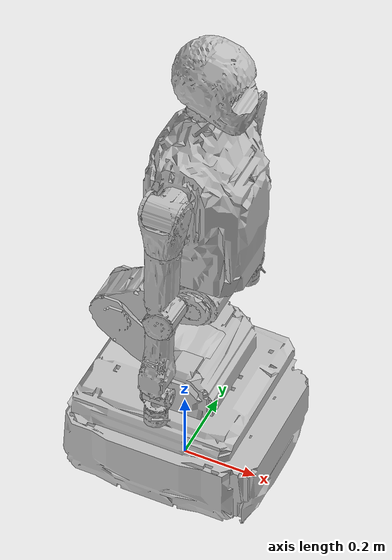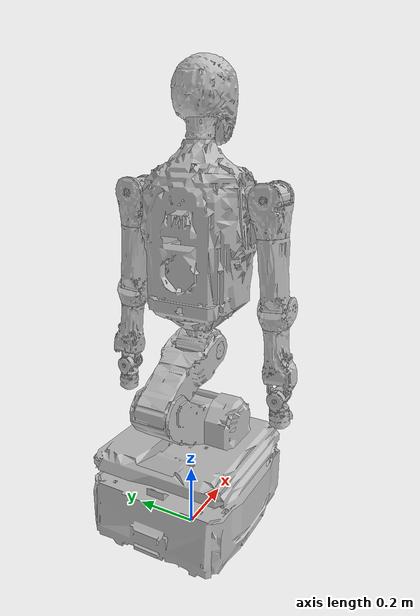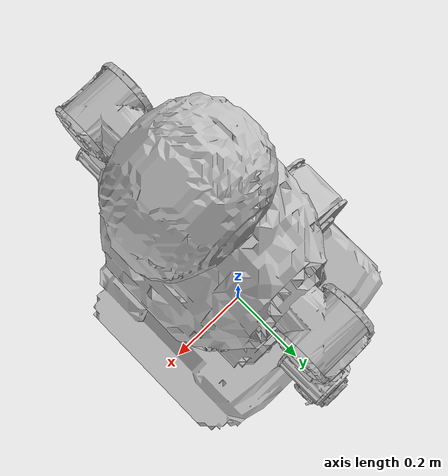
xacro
<?xml version='1.0' encoding='utf-8'?>
<robot name="tianyi2_urdf" xmlns:xacro="http://wiki.ros.org/xacro">
  <link name="base">
    <inertial>
      <origin xyz="-0.00067 -0.002625 0.150395" rpy="0 0 0" />
      <mass value="47.555667" />
      <inertia ixx="1.277779" ixy="-0.001232" ixz="-0.093599" iyy="1.293166" iyz="0.0036" izz="1.385346" />
    </inertial>
    <visual>
      <origin xyz="0 0 0" rpy="0 0 0" />
      <geometry>
        <mesh filename="package://tianyi2_urdf/meshes/base.STL" />
      </geometry>
      <material name="">
        <color rgba="0.752941176470588 0.752941176470588 0.752941176470588 1" />
      </material>
    </visual>
    <collision>
      <origin xyz="0 0 0" rpy="0 0 0" />
      <geometry>
        <mesh filename="package://tianyi2_urdf/meshes_convex/base.STL" />
      </geometry>
    </collision>
  </link>
  <link name="first_leg_pitch_link">
    <inertial>
      <origin xyz="-0.105847 -0.000632 0.041305" rpy="0 0 0" />
      <mass value="2.460134" />
      <inertia ixx="0.012918" ixy="0.000516" ixz="0.0066" iyy="0.028707" iyz="-0.000254" izz="0.027239" />
    </inertial>
    <visual>
      <origin xyz="0 0 0" rpy="0 0 0" />
      <geometry>
        <mesh filename="package://tianyi2_urdf/meshes/first_leg_pitch_link.STL" />
      </geometry>
      <material name="">
        <color rgba="0.752941176470588 0.752941176470588 0.752941176470588 1" />
      </material>
    </visual>
    <collision>
      <origin xyz="0 0 0" rpy="0 0 0" />
      <geometry>
        <mesh filename="package://tianyi2_urdf/meshes_convex/first_leg_pitch_link.STL" />
      </geometry>
    </collision>
  </link>
  <joint name="first_leg_pitch_joint" type="revolute">
    <origin xyz="0.049182 0 0.37" rpy="0 0 0" />
    <parent link="base" />
    <child link="first_leg_pitch_link" />
    <axis xyz="0 1 0" />
    <limit lower="-0.41887902047863906" upper="0.9075712110370514" effort="332.0" velocity="3.9269908169872414" />
  </joint>
  <link name="second_leg_pitch_link">
    <inertial>
      <origin xyz="0.056775 0.000389 0.045258" rpy="0 0 0" />
      <mass value="2.430846" />
      <inertia ixx="0.011853" ixy="4.6e-05" ixz="-0.009109" iyy="0.025086" iyz="5.6e-05" izz="0.022169" />
    </inertial>
    <visual>
      <origin xyz="0 0 0" rpy="0 0 0" />
      <geometry>
        <mesh filename="package://tianyi2_urdf/meshes/second_leg_pitch_link.STL" />
      </geometry>
      <material name="">
        <color rgba="0.752941176470588 0.752941176470588 0.752941176470588 1" />
      </material>
    </visual>
    <collision>
      <origin xyz="0 0 0" rpy="0 0 0" />
      <geometry>
        <mesh filename="package://tianyi2_urdf/meshes_convex/second_leg_pitch_link.STL" />
      </geometry>
    </collision>
  </link>
  <joint name="second_leg_pitch_joint" type="revolute">
    <origin xyz="-0.20785 0 0.12" rpy="0 0 0" />
    <parent link="first_leg_pitch_link" />
    <child link="second_leg_pitch_link" />
    <axis xyz="0 1 0" />
    <limit lower="-1.7453292519943295" upper="0.5061454830783556" effort="332.0" velocity="3.9269908169872414" />
  </joint>
  <link name="waist_pitch_link">
    <inertial>
      <origin xyz="8e-06 0.012369 0.001276" rpy="0 0 0" />
      <mass value="3.38238" />
      <inertia ixx="0.005589" ixy="1e-06" ixz="-1e-06" iyy="0.006064" iyz="4.9e-05" izz="0.005334" />
    </inertial>
    <visual>
      <origin xyz="0 0 0" rpy="0 0 0" />
      <geometry>
        <mesh filename="package://tianyi2_urdf/meshes/waist_pitch_link.STL" />
      </geometry>
      <material name="">
        <color rgba="0.752941176470588 0.752941176470588 0.752941176470588 1" />
      </material>
    </visual>
    <collision>
      <origin xyz="0 0 0" rpy="0 0 0" />
      <geometry>
        <mesh filename="package://tianyi2_urdf/meshes_convex/waist_pitch_link.STL" />
      </geometry>
    </collision>
  </link>
  <joint name="waist_pitch_joint" type="revolute">
    <origin xyz="0.20785 0 0.12" rpy="0 0 0" />
    <parent link="second_leg_pitch_link" />
    <child link="waist_pitch_link" />
    <axis xyz="0 1 0" />
    <limit lower="-0.7853981633974483" upper="2.0943951023931953" effort="332.0" velocity="3.9269908169872414" />
  </joint>
  <link name="waist_yaw_link">
    <inertial>
      <origin xyz="0.009196 -0.000592 0.251379" rpy="0 0 0" />
      <mass value="13.795395" />
      <inertia ixx="0.372395" ixy="0.000248" ixz="0.001337" iyy="0.331609" iyz="0.000779" izz="0.127753" />
    </inertial>
    <visual>
      <origin xyz="0 0 0" rpy="0 0 0" />
      <geometry>
        <mesh filename="package://tianyi2_urdf/meshes/waist_yaw_link.STL" />
      </geometry>
      <material name="">
        <color rgba="0.752941176470588 0.752941176470588 0.752941176470588 1" />
      </material>
    </visual>
    <collision>
      <origin xyz="0 0 0" rpy="0 0 0" />
      <geometry>
        <mesh filename="package://tianyi2_urdf/meshes_convex/waist_yaw_link.STL" />
      </geometry>
    </collision>
  </link>
  <joint name="waist_yaw_joint" type="revolute">
    <origin xyz="0 0 0.07" rpy="0 0 0" />
    <parent link="waist_pitch_link" />
    <child link="waist_yaw_link" />
    <axis xyz="0 0 1" />
    <limit lower="-2.9670597283903604" upper="3.141592653589793" effort="143.0" velocity="4.71238898038469" />
  </joint>
  <link name="head_yaw_link">
    <inertial>
      <origin xyz="-0.000202 0.000454 0.007248" rpy="0 0 0" />
      <mass value="0.088397" />
      <inertia ixx="9.5e-05" ixy="-1e-06" ixz="-3e-06" iyy="7.6e-05" iyz="-3e-06" izz="0.000106" />
    </inertial>
    <visual>
      <origin xyz="0 0 0" rpy="0 0 0" />
      <geometry>
        <mesh filename="package://tianyi2_urdf/meshes/head_yaw_link.STL" />
      </geometry>
      <material name="">
        <color rgba="0.752941176470588 0.752941176470588 0.752941176470588 1" />
      </material>
    </visual>
    <collision>
      <origin xyz="0 0 0" rpy="0 0 0" />
      <geometry>
        <mesh filename="package://tianyi2_urdf/meshes_convex/head_yaw_link.STL" />
      </geometry>
    </collision>
  </link>
  <joint name="head_yaw_joint" type="revolute">
    <origin xyz="-0.002 0 0.56508" rpy="0 0 0" />
    <parent link="waist_yaw_link" />
    <child link="head_yaw_link" />
    <axis xyz="0 0 1" />
    <limit lower="-1.5707963267948966" upper="1.5707963267948966" effort="6.3" velocity="7.5398223686155035" />
  </joint>
  <link name="head_pitch_link">
    <inertial>
      <origin xyz="-0.000274 0.004118 2.3e-05" rpy="0 0 0" />
      <mass value="0.23046" />
      <inertia ixx="9.2e-05" ixy="1e-06" ixz="-1e-06" iyy="5.4e-05" iyz="0.0" izz="9.5e-05" />
    </inertial>
    <visual>
      <origin xyz="0 0 0" rpy="0 0 0" />
      <geometry>
        <mesh filename="package://tianyi2_urdf/meshes/head_pitch_link.STL" />
      </geometry>
      <material name="">
        <color rgba="0.752941176470588 0.752941176470588 0.752941176470588 1" />
      </material>
    </visual>
    <collision>
      <origin xyz="0 0 0" rpy="0 0 0" />
      <geometry>
        <mesh filename="package://tianyi2_urdf/meshes_convex/head_pitch_link.STL" />
      </geometry>
    </collision>
  </link>
  <joint name="head_pitch_joint" type="revolute">
    <origin xyz="0.01455 0 0.0304" rpy="0 0.2618 0" />
    <parent link="head_yaw_link" />
    <child link="head_pitch_link" />
    <axis xyz="0 1 0" />
    <limit lower="-0.4363323129985824" upper="0.4363323129985824" effort="6.3" velocity="7.5398223686155035" />
  </joint>
  <link name="head_roll_link">
    <inertial>
      <origin xyz="0.022467 0.001208 0.053952" rpy="0 0 0" />
      <mass value="0.844627" />
      <inertia ixx="0.00235" ixy="3.8e-05" ixz="0.000436" iyy="0.003365" iyz="6e-06" izz="0.002875" />
    </inertial>
    <visual>
      <origin xyz="0 0 0" rpy="0 0 0" />
      <geometry>
        <mesh filename="package://tianyi2_urdf/meshes/head_roll_link.STL" />
      </geometry>
      <material name="">
        <color rgba="0.752941176470588 0.752941176470588 0.752941176470588 1" />
      </material>
    </visual>
    <collision>
      <origin xyz="0 0 0" rpy="0 0 0" />
      <geometry>
        <mesh filename="package://tianyi2_urdf/meshes_convex/head_roll_link.STL" />
      </geometry>
    </collision>
  </link>
  <joint name="head_roll_joint" type="revolute">
    <origin xyz="0 0 0" rpy="0 0 0" />
    <parent link="head_pitch_link" />
    <child link="head_roll_link" />
    <axis xyz="1 0 0" />
    <limit lower="-0.4537856055185257" upper="0.4537856055185257" effort="6.3" velocity="7.5398223686155035" />
  </joint>
  <link name="camera_head_link">
    <inertial>
      <origin xyz="0.010986 -0.000307 -0.016475" rpy="0 0 0" />
      <mass value="0.1" />
      <inertia ixx="1.6e-05" ixy="0.0" ixz="0.0" iyy="8e-05" iyz="0.0" izz="7.7e-05" />
    </inertial>
    <visual>
      <origin xyz="0 0 0" rpy="0 0 0" />
      <geometry>
        <mesh filename="package://tianyi2_urdf/meshes/camera_head_link.STL" />
      </geometry>
      <material name="">
        <color rgba="0.752941176470588 0.752941176470588 0.752941176470588 1" />
      </material>
    </visual>
    <collision>
      <origin xyz="0 0 0" rpy="0 0 0" />
      <geometry>
        <mesh filename="package://tianyi2_urdf/meshes_convex/camera_head_link.STL" />
      </geometry>
    </collision>
  </link>
  <joint name="camera_head_joint" type="fixed">
    <origin xyz="0.075288 0.010935 0.07441" rpy="-1.8326 0 -1.5708" />
    <parent link="head_roll_link" />
    <child link="camera_head_link" />
    <axis xyz="0 0 0" />
  </joint>
  <link name="shoulder_pitch_l_link">
    <inertial>
      <origin xyz="0.007494 0.064184 -2e-05" rpy="0 0 0" />
      <mass value="1.032698" />
      <inertia ixx="0.001025" ixy="-2.7e-05" ixz="-1e-06" iyy="0.001078" iyz="0.0" izz="0.001247" />
    </inertial>
    <visual>
      <origin xyz="0 0 0" rpy="0 0 0" />
      <geometry>
        <mesh filename="package://tianyi2_urdf/meshes/shoulder_pitch_l_link.STL" />
      </geometry>
      <material name="">
        <color rgba="0.752941176470588 0.752941176470588 0.752941176470588 1" />
      </material>
    </visual>
    <collision>
      <origin xyz="0 0 0" rpy="0 0 0" />
      <geometry>
        <mesh filename="package://tianyi2_urdf/meshes_convex/shoulder_pitch_l_link.STL" />
      </geometry>
    </collision>
  </link>
  <joint name="shoulder_pitch_l_joint" type="revolute">
    <origin xyz="0 0.14539 0.37721" rpy="0.087266 0 0" />
    <parent link="waist_yaw_link" />
    <child link="shoulder_pitch_l_link" />
    <axis xyz="0 1 0" />
    <limit lower="-2.9670597283903604" upper="2.9670597283903604" effort="91.0" velocity="9.215338450530059" />
  </joint>
  <link name="shoulder_roll_l_link">
    <inertial>
      <origin xyz="0.002389 0.002259 -0.048236" rpy="0 0 0" />
      <mass value="0.440997" />
      <inertia ixx="0.001001" ixy="-4e-06" ixz="-2.5e-05" iyy="0.001313" iyz="-1.4e-05" izz="0.000911" />
    </inertial>
    <visual>
      <origin xyz="0 0 0" rpy="0 0 0" />
      <geometry>
        <mesh filename="package://tianyi2_urdf/meshes/shoulder_roll_l_link.STL" />
      </geometry>
      <material name="">
        <color rgba="0.752941176470588 0.752941176470588 0.752941176470588 1" />
      </material>
    </visual>
    <collision>
      <origin xyz="0 0 0" rpy="0 0 0" />
      <geometry>
        <mesh filename="package://tianyi2_urdf/meshes_convex/shoulder_roll_l_link.STL" />
      </geometry>
    </collision>
  </link>
  <joint name="shoulder_roll_l_joint" type="revolute">
    <origin xyz="0 0.068 0" rpy="0 0 0" />
    <parent link="shoulder_pitch_l_link" />
    <child link="shoulder_roll_l_link" />
    <axis xyz="1 0 0" />
    <limit lower="-0.2617993877991494" upper="2.6179938779914944" effort="95.0" velocity="3.979350694547071" />
  </joint>
  <link name="shoulder_yaw_l_link">
    <inertial>
      <origin xyz="0.008319 0.002686 -0.112525" rpy="0 0 0" />
      <mass value="1.365033" />
      <inertia ixx="0.009637" ixy="-5.7e-05" ixz="0.00095" iyy="0.0096" iyz="0.000339" izz="0.001331" />
    </inertial>
    <visual>
      <origin xyz="0 0 0" rpy="0 0 0" />
      <geometry>
        <mesh filename="package://tianyi2_urdf/meshes/shoulder_yaw_l_link.STL" />
      </geometry>
      <material name="">
        <color rgba="0.752941176470588 0.752941176470588 0.752941176470588 1" />
      </material>
    </visual>
    <collision>
      <origin xyz="0 0 0" rpy="0 0 0" />
      <geometry>
        <mesh filename="package://tianyi2_urdf/meshes_convex/shoulder_yaw_l_link.STL" />
      </geometry>
    </collision>
  </link>
  <joint name="shoulder_yaw_l_joint" type="revolute">
    <origin xyz="0 0 -0.1025" rpy="0 0 0" />
    <parent link="shoulder_roll_l_link" />
    <child link="shoulder_yaw_l_link" />
    <axis xyz="0 0 1" />
    <limit lower="-2.9670597283903604" upper="2.9670597283903604" effort="35.0" velocity="5.235987755982989" />
  </joint>
  <link name="elbow_pitch_l_link">
    <inertial>
      <origin xyz="-0.014694 -7.2e-05 -0.026081" rpy="0 0 0" />
      <mass value="0.246311" />
      <inertia ixx="0.000381" ixy="1e-06" ixz="-1.2e-05" iyy="0.000222" iyz="2e-06" izz="0.000401" />
    </inertial>
    <visual>
      <origin xyz="0 0 0" rpy="0 0 0" />
      <geometry>
        <mesh filename="package://tianyi2_urdf/meshes/elbow_pitch_l_link.STL" />
      </geometry>
      <material name="">
        <color rgba="0.752941176470588 0.752941176470588 0.752941176470588 1" />
      </material>
    </visual>
    <collision>
      <origin xyz="0 0 0" rpy="0 0 0" />
      <geometry>
        <mesh filename="package://tianyi2_urdf/meshes_convex/elbow_pitch_l_link.STL" />
      </geometry>
    </collision>
  </link>
  <joint name="elbow_pitch_l_joint" type="revolute">
    <origin xyz="0.02 0 -0.1975" rpy="0 0 0" />
    <parent link="shoulder_yaw_l_link" />
    <child link="elbow_pitch_l_link" />
    <axis xyz="0 1 0" />
    <limit lower="-2.6179938779914944" upper="0.2617993877991494" effort="35.0" velocity="5.235987755982989" />
  </joint>
  <link name="elbow_yaw_l_link">
    <inertial>
      <origin xyz="0.000158 0.001503 -0.069535" rpy="0 0 0" />
      <mass value="0.986828" />
      <inertia ixx="0.003108" ixy="-1e-06" ixz="8e-06" iyy="0.003035" iyz="8.9e-05" izz="0.00058" />
    </inertial>
    <visual>
      <origin xyz="0 0 0" rpy="0 0 0" />
      <geometry>
        <mesh filename="package://tianyi2_urdf/meshes/elbow_yaw_l_link.STL" />
      </geometry>
      <material name="">
        <color rgba="0.752941176470588 0.752941176470588 0.752941176470588 1" />
      </material>
    </visual>
    <collision>
      <origin xyz="0 0 0" rpy="0 0 0" />
      <geometry>
        <mesh filename="package://tianyi2_urdf/meshes_convex/elbow_yaw_l_link.STL" />
      </geometry>
    </collision>
  </link>
  <joint name="elbow_yaw_l_joint" type="revolute">
    <origin xyz="-0.02 0 -0.0543" rpy="0 0 0" />
    <parent link="elbow_pitch_l_link" />
    <child link="elbow_yaw_l_link" />
    <axis xyz="0 0 1" />
    <limit lower="-2.9670597283903604" upper="2.9670597283903604" effort="24.0" velocity="10.471975511965978" />
  </joint>
  <link name="wrist_pitch_l_link">
    <inertial>
      <origin xyz="0.005362 0.00064 -0.018812" rpy="0 0 0" />
      <mass value="0.262007" />
      <inertia ixx="7.1e-05" ixy="-3e-06" ixz="-2e-06" iyy="0.000112" iyz="-3e-06" izz="0.000111" />
    </inertial>
    <visual>
      <origin xyz="0 0 0" rpy="0 0 0" />
      <geometry>
        <mesh filename="package://tianyi2_urdf/meshes/wrist_pitch_l_link.STL" />
      </geometry>
      <material name="">
        <color rgba="0.752941176470588 0.752941176470588 0.752941176470588 1" />
      </material>
    </visual>
    <collision>
      <origin xyz="0 0 0" rpy="0 0 0" />
      <geometry>
        <mesh filename="package://tianyi2_urdf/meshes_convex/wrist_pitch_l_link.STL" />
      </geometry>
    </collision>
  </link>
  <joint name="wrist_pitch_l_joint" type="revolute">
    <origin xyz="0 0.002 -0.1887" rpy="0 0 0" />
    <parent link="elbow_yaw_l_link" />
    <child link="wrist_pitch_l_link" />
    <axis xyz="0 1 0" />
    <limit lower="-0.7853981633974483" upper="1.0471975511965976" effort="6.3" velocity="7.5398223686155035" />
  </joint>
  <link name="wrist_roll_l_link">
    <inertial>
      <origin xyz="0.000801 8.4e-05 -0.029302" rpy="0 0 0" />
      <mass value="0.131751" />
      <inertia ixx="6.9e-05" ixy="0.0" ixz="-1e-06" iyy="0.000116" iyz="0.0" izz="0.00011" />
    </inertial>
    <visual>
      <origin xyz="0 0 0" rpy="0 0 0" />
      <geometry>
        <mesh filename="package://tianyi2_urdf/meshes/wrist_roll_l_link.STL" />
      </geometry>
      <material name="">
        <color rgba="0.752941176470588 0.752941176470588 0.752941176470588 1" />
      </material>
    </visual>
    <collision>
      <origin xyz="0 0 0" rpy="0 0 0" />
      <geometry>
        <mesh filename="package://tianyi2_urdf/meshes_convex/wrist_roll_l_link.STL" />
      </geometry>
    </collision>
  </link>
  <joint name="wrist_roll_l_joint" type="revolute">
    <origin xyz="5.0485E-05 0 -0.02" rpy="0 0 0" />
    <parent link="wrist_pitch_l_link" />
    <child link="wrist_roll_l_link" />
    <axis xyz="1 0 0" />
    <limit lower="-1.6580627893946132" upper="1.3089969389957472" effort="6.3" velocity="7.5398223686155035" />
  </joint>
  <link name="left_tcp_link">
    <inertial>
      <origin xyz="0.000238 0.000502 0.021714" rpy="0 0 0" />
      <mass value="0.252604" />
      <inertia ixx="0.000124" ixy="-2e-06" ixz="0.0" iyy="0.000119" iyz="0.0" izz="0.000132" />
    </inertial>
    <visual>
      <origin xyz="0 0 0" rpy="0 0 0" />
      <geometry>
        <mesh filename="package://tianyi2_urdf/meshes/left_tcp_link.STL" />
      </geometry>
      <material name="">
        <color rgba="0.752941176470588 0.752941176470588 0.752941176470588 1" />
      </material>
    </visual>
    <collision>
      <origin xyz="0 0 0" rpy="0 0 0" />
      <geometry>
        <mesh filename="package://tianyi2_urdf/meshes_convex/left_tcp_link.STL" />
      </geometry>
    </collision>
  </link>
  <joint name="left_tcp_joint" type="fixed">
    <origin xyz="0 3.5454E-05 -0.084799" rpy="0 0 0" />
    <parent link="wrist_roll_l_link" />
    <child link="left_tcp_link" />
    <axis xyz="0 0 0" />
  </joint>
  <link name="shoulder_pitch_r_link">
    <inertial>
      <origin xyz="0.007494 -0.064184 -2e-05" rpy="0 0 0" />
      <mass value="1.032698" />
      <inertia ixx="0.001025" ixy="2.7e-05" ixz="-1e-06" iyy="0.001078" iyz="0.0" izz="0.001247" />
    </inertial>
    <visual>
      <origin xyz="0 0 0" rpy="0 0 0" />
      <geometry>
        <mesh filename="package://tianyi2_urdf/meshes/shoulder_pitch_r_link.STL" />
      </geometry>
      <material name="">
        <color rgba="0.752941176470588 0.752941176470588 0.752941176470588 1" />
      </material>
    </visual>
    <collision>
      <origin xyz="0 0 0" rpy="0 0 0" />
      <geometry>
        <mesh filename="package://tianyi2_urdf/meshes_convex/shoulder_pitch_r_link.STL" />
      </geometry>
    </collision>
  </link>
  <joint name="shoulder_pitch_r_joint" type="revolute">
    <origin xyz="0 -0.14539 0.37721" rpy="-0.087266 0 0" />
    <parent link="waist_yaw_link" />
    <child link="shoulder_pitch_r_link" />
    <axis xyz="0 1 0" />
    <limit lower="-2.9670597283903604" upper="2.9670597283903604" effort="91.0" velocity="9.215338450530059" />
  </joint>
  <link name="shoulder_roll_r_link">
    <inertial>
      <origin xyz="0.002389 -0.002259 -0.048236" rpy="0 0 0" />
      <mass value="0.440997" />
      <inertia ixx="0.001001" ixy="4e-06" ixz="-2.5e-05" iyy="0.001313" iyz="1.4e-05" izz="0.000911" />
    </inertial>
    <visual>
      <origin xyz="0 0 0" rpy="0 0 0" />
      <geometry>
        <mesh filename="package://tianyi2_urdf/meshes/shoulder_roll_r_link.STL" />
      </geometry>
      <material name="">
        <color rgba="0.752941176470588 0.752941176470588 0.752941176470588 1" />
      </material>
    </visual>
    <collision>
      <origin xyz="0 0 0" rpy="0 0 0" />
      <geometry>
        <mesh filename="package://tianyi2_urdf/meshes_convex/shoulder_roll_r_link.STL" />
      </geometry>
    </collision>
  </link>
  <joint name="shoulder_roll_r_joint" type="revolute">
    <origin xyz="0 -0.068 0" rpy="0 0 0" />
    <parent link="shoulder_pitch_r_link" />
    <child link="shoulder_roll_r_link" />
    <axis xyz="1 0 0" />
    <limit lower="-2.6179938779914944" upper="0.2617993877991494" effort="95.0" velocity="3.979350694547071" />
  </joint>
  <link name="shoulder_yaw_r_link">
    <inertial>
      <origin xyz="0.008319 -0.002686 -0.112525" rpy="0 0 0" />
      <mass value="1.365033" />
      <inertia ixx="0.009637" ixy="5.7e-05" ixz="0.00095" iyy="0.0096" iyz="-0.000339" izz="0.001331" />
    </inertial>
    <visual>
      <origin xyz="0 0 0" rpy="0 0 0" />
      <geometry>
        <mesh filename="package://tianyi2_urdf/meshes/shoulder_yaw_r_link.STL" />
      </geometry>
      <material name="">
        <color rgba="0.752941176470588 0.752941176470588 0.752941176470588 1" />
      </material>
    </visual>
    <collision>
      <origin xyz="0 0 0" rpy="0 0 0" />
      <geometry>
        <mesh filename="package://tianyi2_urdf/meshes_convex/shoulder_yaw_r_link.STL" />
      </geometry>
    </collision>
  </link>
  <joint name="shoulder_yaw_r_joint" type="revolute">
    <origin xyz="0 0 -0.1025" rpy="0 0 0" />
    <parent link="shoulder_roll_r_link" />
    <child link="shoulder_yaw_r_link" />
    <axis xyz="0 0 1" />
    <limit lower="-2.9670597283903604" upper="2.9670597283903604" effort="35.0" velocity="5.235987755982989" />
  </joint>
  <link name="elbow_pitch_r_link">
    <inertial>
      <origin xyz="-0.014694 7.2e-05 -0.026081" rpy="0 0 0" />
      <mass value="0.246311" />
      <inertia ixx="0.000381" ixy="-1e-06" ixz="-1.2e-05" iyy="0.000222" iyz="-2e-06" izz="0.000401" />
    </inertial>
    <visual>
      <origin xyz="0 0 0" rpy="0 0 0" />
      <geometry>
        <mesh filename="package://tianyi2_urdf/meshes/elbow_pitch_r_link.STL" />
      </geometry>
      <material name="">
        <color rgba="0.752941176470588 0.752941176470588 0.752941176470588 1" />
      </material>
    </visual>
    <collision>
      <origin xyz="0 0 0" rpy="0 0 0" />
      <geometry>
        <mesh filename="package://tianyi2_urdf/meshes_convex/elbow_pitch_r_link.STL" />
      </geometry>
    </collision>
  </link>
  <joint name="elbow_pitch_r_joint" type="revolute">
    <origin xyz="0.02 0 -0.1975" rpy="0 0 0" />
    <parent link="shoulder_yaw_r_link" />
    <child link="elbow_pitch_r_link" />
    <axis xyz="0 1 0" />
    <limit lower="-2.6179938779914944" upper="0.2617993877991494" effort="35.0" velocity="5.235987755982989" />
  </joint>
  <link name="elbow_yaw_r_link">
    <inertial>
      <origin xyz="0.000158 -0.001503 -0.069535" rpy="0 0 0" />
      <mass value="0.986828" />
      <inertia ixx="0.003108" ixy="1e-06" ixz="8e-06" iyy="0.003035" iyz="-8.9e-05" izz="0.00058" />
    </inertial>
    <visual>
      <origin xyz="0 0 0" rpy="0 0 0" />
      <geometry>
        <mesh filename="package://tianyi2_urdf/meshes/elbow_yaw_r_link.STL" />
      </geometry>
      <material name="">
        <color rgba="0.752941176470588 0.752941176470588 0.752941176470588 1" />
      </material>
    </visual>
    <collision>
      <origin xyz="0 0 0" rpy="0 0 0" />
      <geometry>
        <mesh filename="package://tianyi2_urdf/meshes_convex/elbow_yaw_r_link.STL" />
      </geometry>
    </collision>
  </link>
  <joint name="elbow_yaw_r_joint" type="revolute">
    <origin xyz="-0.02 0 -0.0543" rpy="0 0 0" />
    <parent link="elbow_pitch_r_link" />
    <child link="elbow_yaw_r_link" />
    <axis xyz="0 0 1" />
    <limit lower="-2.9670597283903604" upper="2.9670597283903604" effort="24.0" velocity="10.471975511965978" />
  </joint>
  <link name="wrist_pitch_r_link">
    <inertial>
      <origin xyz="0.005362 -0.00064 -0.018812" rpy="0 0 0" />
      <mass value="0.262007" />
      <inertia ixx="7.1e-05" ixy="3e-06" ixz="-2e-06" iyy="0.000112" iyz="3e-06" izz="0.000111" />
    </inertial>
    <visual>
      <origin xyz="0 0 0" rpy="0 0 0" />
      <geometry>
        <mesh filename="package://tianyi2_urdf/meshes/wrist_pitch_r_link.STL" />
      </geometry>
      <material name="">
        <color rgba="0.752941176470588 0.752941176470588 0.752941176470588 1" />
      </material>
    </visual>
    <collision>
      <origin xyz="0 0 0" rpy="0 0 0" />
      <geometry>
        <mesh filename="package://tianyi2_urdf/meshes_convex/wrist_pitch_r_link.STL" />
      </geometry>
    </collision>
  </link>
  <joint name="wrist_pitch_r_joint" type="revolute">
    <origin xyz="0 -0.002 -0.1887" rpy="0 0 0" />
    <parent link="elbow_yaw_r_link" />
    <child link="wrist_pitch_r_link" />
    <axis xyz="0 1 0" />
    <limit lower="-0.7853981633974483" upper="1.0471975511965976" effort="6.3" velocity="7.5398223686155035" />
  </joint>
  <link name="wrist_roll_r_link">
    <inertial>
      <origin xyz="0.000801 -8.4e-05 -0.029302" rpy="0 0 0" />
      <mass value="0.131751" />
      <inertia ixx="6.9e-05" ixy="0.0" ixz="-1e-06" iyy="0.000116" iyz="0.0" izz="0.00011" />
    </inertial>
    <visual>
      <origin xyz="0 0 0" rpy="0 0 0" />
      <geometry>
        <mesh filename="package://tianyi2_urdf/meshes/wrist_roll_r_link.STL" />
      </geometry>
      <material name="">
        <color rgba="0.752941176470588 0.752941176470588 0.752941176470588 1" />
      </material>
    </visual>
    <collision>
      <origin xyz="0 0 0" rpy="0 0 0" />
      <geometry>
        <mesh filename="package://tianyi2_urdf/meshes_convex/wrist_roll_r_link.STL" />
      </geometry>
    </collision>
  </link>
  <joint name="wrist_roll_r_joint" type="revolute">
    <origin xyz="5.0485E-05 0 -0.02" rpy="0 0 0" />
    <parent link="wrist_pitch_r_link" />
    <child link="wrist_roll_r_link" />
    <axis xyz="1 0 0" />
    <limit lower="-1.3089969389957472" upper="1.6580627893946132" effort="6.3" velocity="7.5398223686155035" />
  </joint>
  <link name="right_tcp_link">
    <inertial>
      <origin xyz="0.000238 -0.000502 0.021714" rpy="0 0 0" />
      <mass value="0.252604" />
      <inertia ixx="0.000124" ixy="2e-06" ixz="0.0" iyy="0.000119" iyz="0.0" izz="0.000132" />
    </inertial>
    <visual>
      <origin xyz="0 0 0" rpy="0 0 0" />
      <geometry>
        <mesh filename="package://tianyi2_urdf/meshes/right_tcp_link.STL" />
      </geometry>
      <material name="">
        <color rgba="0.752941176470588 0.752941176470588 0.752941176470588 1" />
      </material>
    </visual>
    <collision>
      <origin xyz="0 0 0" rpy="0 0 0" />
      <geometry>
        <mesh filename="package://tianyi2_urdf/meshes_convex/right_tcp_link.STL" />
      </geometry>
    </collision>
  </link>
  <joint name="right_tcp_joint" type="fixed">
    <origin xyz="0 -3.5405E-05 -0.084799" rpy="0 0 0" />
    <parent link="wrist_roll_r_link" />
    <child link="right_tcp_link" />
    <axis xyz="0 0 0" />
  </joint>
</robot>
